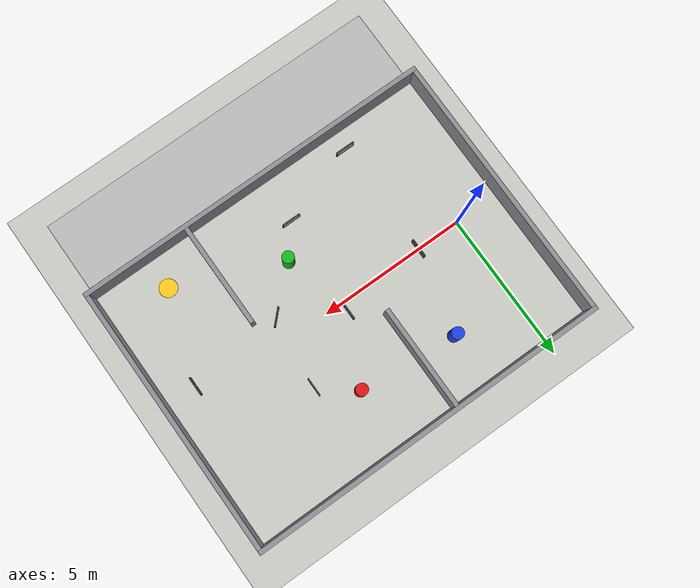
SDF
<?xml version="1.0"?>
<!-- Generated by tools/make_world.py from hunt "practice". Do not edit by hand. -->
<sdf version="1.8">
  <world name="clue_hunt_practice">

    <physics name="2ms" type="ignored">
      <max_step_size>0.002</max_step_size>
      <real_time_factor>1.0</real_time_factor>
    </physics>

    <plugin filename="ignition-gazebo-physics-system" name="ignition::gazebo::systems::Physics"/>
    <plugin filename="ignition-gazebo-user-commands-system" name="ignition::gazebo::systems::UserCommands"/>
    <plugin filename="ignition-gazebo-scene-broadcaster-system" name="ignition::gazebo::systems::SceneBroadcaster"/>
    <plugin filename="ignition-gazebo-sensors-system" name="ignition::gazebo::systems::Sensors">
      <render_engine>ogre2</render_engine>
    </plugin>
    <plugin filename="ignition-gazebo-imu-system" name="ignition::gazebo::systems::Imu"/>

    <scene>
      <ambient>0.7 0.7 0.7 1</ambient>
      <background>0.75 0.85 0.95 1</background>
      <shadows>false</shadows>
      <grid>false</grid>
    </scene>

    <light type="directional" name="sun">
      <cast_shadows>false</cast_shadows>
      <pose>0 0 10 0 0 0</pose>
      <diffuse>0.9 0.9 0.9 1</diffuse>
      <specular>0.1 0.1 0.1 1</specular>
      <direction>-0.4 0.3 -0.9</direction>
    </light>

    <model name="ground_plane">
      <static>true</static>
      <link name="link">
        <collision name="c">
          <geometry><plane><normal>0 0 1</normal><size>40 40</size></plane></geometry>
        </collision>
        <visual name="v">
          <geometry><plane><normal>0 0 1</normal><size>40 40</size></plane></geometry>
          <material><ambient>0.78 0.78 0.76 1</ambient><diffuse>0.78 0.78 0.76 1</diffuse></material>
        </visual>
      </link>
    </model>

    <model name="arena">
      <static>true</static>
      <link name="link">
      <collision name="wall0_c"><pose>4.500 4.575 0.500 0 0 0</pose><geometry><box><size>12.300 0.150 1.000</size></box></geometry></collision>
      <visual name="wall0_v"><pose>4.500 4.575 0.500 0 0 0</pose><geometry><box><size>12.300 0.150 1.000</size></box></geometry><material><ambient>0.55 0.55 0.58 1</ambient><diffuse>0.55 0.55 0.58 1</diffuse></material></visual>
      <collision name="wall1_c"><pose>4.500 -4.575 0.500 0 0 0</pose><geometry><box><size>12.300 0.150 1.000</size></box></geometry></collision>
      <visual name="wall1_v"><pose>4.500 -4.575 0.500 0 0 0</pose><geometry><box><size>12.300 0.150 1.000</size></box></geometry><material><ambient>0.55 0.55 0.58 1</ambient><diffuse>0.55 0.55 0.58 1</diffuse></material></visual>
      <collision name="wall2_c"><pose>-1.575 0.000 0.500 0 0 0</pose><geometry><box><size>0.150 9.000 1.000</size></box></geometry></collision>
      <visual name="wall2_v"><pose>-1.575 0.000 0.500 0 0 0</pose><geometry><box><size>0.150 9.000 1.000</size></box></geometry><material><ambient>0.55 0.55 0.58 1</ambient><diffuse>0.55 0.55 0.58 1</diffuse></material></visual>
      <collision name="wall3_c"><pose>10.575 0.000 0.500 0 0 0</pose><geometry><box><size>0.150 9.000 1.000</size></box></geometry></collision>
      <visual name="wall3_v"><pose>10.575 0.000 0.500 0 0 0</pose><geometry><box><size>0.150 9.000 1.000</size></box></geometry><material><ambient>0.55 0.55 0.58 1</ambient><diffuse>0.55 0.55 0.58 1</diffuse></material></visual>
      <collision name="wall4_c"><pose>3.500 2.750 0.500 0 0 0</pose><geometry><box><size>0.150 3.500 1.000</size></box></geometry></collision>
      <visual name="wall4_v"><pose>3.500 2.750 0.500 0 0 0</pose><geometry><box><size>0.150 3.500 1.000</size></box></geometry><material><ambient>0.55 0.55 0.58 1</ambient><diffuse>0.55 0.55 0.58 1</diffuse></material></visual>
      <collision name="wall5_c"><pose>7.000 -2.750 0.500 0 0 0</pose><geometry><box><size>0.150 3.500 1.000</size></box></geometry></collision>
      <visual name="wall5_v"><pose>7.000 -2.750 0.500 0 0 0</pose><geometry><box><size>0.150 3.500 1.000</size></box></geometry><material><ambient>0.55 0.55 0.58 1</ambient><diffuse>0.55 0.55 0.58 1</diffuse></material></visual>
      </link>
    </model>

    <model name="pillar_P1">
      <static>true</static>
      <pose>5.5 2.5 0.5 0 0 0</pose>
      <link name="link">
        <collision name="c"><geometry><cylinder><radius>0.2</radius><length>1.0</length></cylinder></geometry></collision>
        <visual name="v"><geometry><cylinder><radius>0.2</radius><length>1.0</length></cylinder></geometry>
          <material><ambient>0.85 0.08 0.08 1</ambient><diffuse>0.85 0.08 0.08 1</diffuse></material>
        </visual>
      </link>
    </model>

    <model name="pillar_P2">
      <static>true</static>
      <pose>5.0 -2.0 0.5 0 0 0</pose>
      <link name="link">
        <collision name="c"><geometry><cylinder><radius>0.2</radius><length>1.0</length></cylinder></geometry></collision>
        <visual name="v"><geometry><cylinder><radius>0.2</radius><length>1.0</length></cylinder></geometry>
          <material><ambient>0.1 0.7 0.15 1</ambient><diffuse>0.1 0.7 0.15 1</diffuse></material>
        </visual>
      </link>
    </model>

    <model name="pillar_P3">
      <static>true</static>
      <pose>2.2 2.8 0.5 0 0 0</pose>
      <link name="link">
        <collision name="c"><geometry><cylinder><radius>0.2</radius><length>1.0</length></cylinder></geometry></collision>
        <visual name="v"><geometry><cylinder><radius>0.2</radius><length>1.0</length></cylinder></geometry>
          <material><ambient>0.1 0.25 0.9 1</ambient><diffuse>0.1 0.25 0.9 1</diffuse></material>
        </visual>
      </link>
    </model>

    <include>
      <uri>model://board_practice_b1</uri>
      <name>board_b1</name>
      <pose>1.500 0.000 0 0 0 3.1416</pose>
    </include>

    <include>
      <uri>model://board_practice_b2</uri>
      <name>board_b2</name>
      <pose>1.500 -3.900 0 0 0 1.5708</pose>
    </include>

    <include>
      <uri>model://board_practice_b3</uri>
      <name>board_b3</name>
      <pose>6.600 1.600 0 0 0 3.1416</pose>
    </include>

    <include>
      <uri>model://board_practice_b4</uri>
      <name>board_b4</name>
      <pose>4.400 0.300 0 0 0 0.0000</pose>
    </include>

    <include>
      <uri>model://board_practice_b5</uri>
      <name>board_b5</name>
      <pose>9.500 -0.500 0 0 0 3.1416</pose>
    </include>

    <include>
      <uri>model://board_practice_d7</uri>
      <name>board_d7</name>
      <pose>4.200 -3.000 0 0 0 1.5708</pose>
    </include>

    <include>
      <uri>model://board_practice_x4</uri>
      <name>board_x4</name>
      <pose>6.300 -0.800 0 0 0 2.3562</pose>
    </include>

    <!-- Logo banner on the floor south of the arena (outside the walls: robots can't see it) -->
    <include>
      <uri>model://roboclub_banner</uri>
      <name>roboclub_banner</name>
      <pose>4.5 -6.1 0 0 0 0</pose>
    </include>

    <model name="treasure">
      <static>true</static>
      <pose>8.500 -3.500 0.005 0 0 0</pose>
      <link name="link">
        <visual name="v">
          <geometry><cylinder><radius>0.3</radius><length>0.01</length></cylinder></geometry>
          <material>
            <ambient>1.0 0.78 0.1 1</ambient>
            <diffuse>1.0 0.78 0.1 1</diffuse>
            <emissive>0.3 0.22 0.0 1</emissive>
          </material>
        </visual>
      </link>
    </model>

  </world>
</sdf>

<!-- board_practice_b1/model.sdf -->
<sdf version="1.8">
  <model name="board_practice_b1">
    <static>true</static>
    <link name="link">
      <collision name="body_collision">
        <pose>0 0 0.185 0 0 0</pose>
        <geometry><box><size>0.04 0.64 0.37</size></box></geometry>
      </collision>
      <visual name="body">
        <pose>0 0 0.185 0 0 0</pose>
        <geometry><box><size>0.04 0.64 0.37</size></box></geometry>
        <material>
          <ambient>0.30 0.30 0.33 1</ambient>
          <diffuse>0.30 0.30 0.33 1</diffuse>
        </material>
      </visual>
      <visual name="face">
        <geometry><mesh><uri>model://board_practice_b1/meshes/board_practice_b1.obj</uri></mesh></geometry>
      </visual>
    </link>
  </model>
</sdf>

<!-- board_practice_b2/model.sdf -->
<sdf version="1.8">
  <model name="board_practice_b2">
    <static>true</static>
    <link name="link">
      <collision name="body_collision">
        <pose>0 0 0.185 0 0 0</pose>
        <geometry><box><size>0.04 0.64 0.37</size></box></geometry>
      </collision>
      <visual name="body">
        <pose>0 0 0.185 0 0 0</pose>
        <geometry><box><size>0.04 0.64 0.37</size></box></geometry>
        <material>
          <ambient>0.30 0.30 0.33 1</ambient>
          <diffuse>0.30 0.30 0.33 1</diffuse>
        </material>
      </visual>
      <visual name="face">
        <geometry><mesh><uri>model://board_practice_b2/meshes/board_practice_b2.obj</uri></mesh></geometry>
      </visual>
    </link>
  </model>
</sdf>

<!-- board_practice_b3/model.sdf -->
<sdf version="1.8">
  <model name="board_practice_b3">
    <static>true</static>
    <link name="link">
      <collision name="body_collision">
        <pose>0 0 0.185 0 0 0</pose>
        <geometry><box><size>0.04 0.64 0.37</size></box></geometry>
      </collision>
      <visual name="body">
        <pose>0 0 0.185 0 0 0</pose>
        <geometry><box><size>0.04 0.64 0.37</size></box></geometry>
        <material>
          <ambient>0.30 0.30 0.33 1</ambient>
          <diffuse>0.30 0.30 0.33 1</diffuse>
        </material>
      </visual>
      <visual name="face">
        <geometry><mesh><uri>model://board_practice_b3/meshes/board_practice_b3.obj</uri></mesh></geometry>
      </visual>
    </link>
  </model>
</sdf>

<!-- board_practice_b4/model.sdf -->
<sdf version="1.8">
  <model name="board_practice_b4">
    <static>true</static>
    <link name="link">
      <collision name="body_collision">
        <pose>0 0 0.185 0 0 0</pose>
        <geometry><box><size>0.04 0.64 0.37</size></box></geometry>
      </collision>
      <visual name="body">
        <pose>0 0 0.185 0 0 0</pose>
        <geometry><box><size>0.04 0.64 0.37</size></box></geometry>
        <material>
          <ambient>0.30 0.30 0.33 1</ambient>
          <diffuse>0.30 0.30 0.33 1</diffuse>
        </material>
      </visual>
      <visual name="face">
        <geometry><mesh><uri>model://board_practice_b4/meshes/board_practice_b4.obj</uri></mesh></geometry>
      </visual>
    </link>
  </model>
</sdf>

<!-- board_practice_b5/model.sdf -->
<sdf version="1.8">
  <model name="board_practice_b5">
    <static>true</static>
    <link name="link">
      <collision name="body_collision">
        <pose>0 0 0.185 0 0 0</pose>
        <geometry><box><size>0.04 0.64 0.37</size></box></geometry>
      </collision>
      <visual name="body">
        <pose>0 0 0.185 0 0 0</pose>
        <geometry><box><size>0.04 0.64 0.37</size></box></geometry>
        <material>
          <ambient>0.30 0.30 0.33 1</ambient>
          <diffuse>0.30 0.30 0.33 1</diffuse>
        </material>
      </visual>
      <visual name="face">
        <geometry><mesh><uri>model://board_practice_b5/meshes/board_practice_b5.obj</uri></mesh></geometry>
      </visual>
    </link>
  </model>
</sdf>

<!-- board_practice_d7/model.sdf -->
<sdf version="1.8">
  <model name="board_practice_d7">
    <static>true</static>
    <link name="link">
      <collision name="body_collision">
        <pose>0 0 0.185 0 0 0</pose>
        <geometry><box><size>0.04 0.64 0.37</size></box></geometry>
      </collision>
      <visual name="body">
        <pose>0 0 0.185 0 0 0</pose>
        <geometry><box><size>0.04 0.64 0.37</size></box></geometry>
        <material>
          <ambient>0.30 0.30 0.33 1</ambient>
          <diffuse>0.30 0.30 0.33 1</diffuse>
        </material>
      </visual>
      <visual name="face">
        <geometry><mesh><uri>model://board_practice_d7/meshes/board_practice_d7.obj</uri></mesh></geometry>
      </visual>
    </link>
  </model>
</sdf>

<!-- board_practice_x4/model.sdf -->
<sdf version="1.8">
  <model name="board_practice_x4">
    <static>true</static>
    <link name="link">
      <collision name="body_collision">
        <pose>0 0 0.185 0 0 0</pose>
        <geometry><box><size>0.04 0.64 0.37</size></box></geometry>
      </collision>
      <visual name="body">
        <pose>0 0 0.185 0 0 0</pose>
        <geometry><box><size>0.04 0.64 0.37</size></box></geometry>
        <material>
          <ambient>0.30 0.30 0.33 1</ambient>
          <diffuse>0.30 0.30 0.33 1</diffuse>
        </material>
      </visual>
      <visual name="face">
        <geometry><mesh><uri>model://board_practice_x4/meshes/board_practice_x4.obj</uri></mesh></geometry>
      </visual>
    </link>
  </model>
</sdf>

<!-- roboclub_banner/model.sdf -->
<sdf version="1.8">
  <model name="roboclub_banner">
    <static>true</static>
    <link name="link">
      <visual name="banner">
        <geometry><mesh><uri>model://roboclub_banner/meshes/roboclub_banner.obj</uri></mesh></geometry>
      </visual>
    </link>
  </model>
</sdf>
